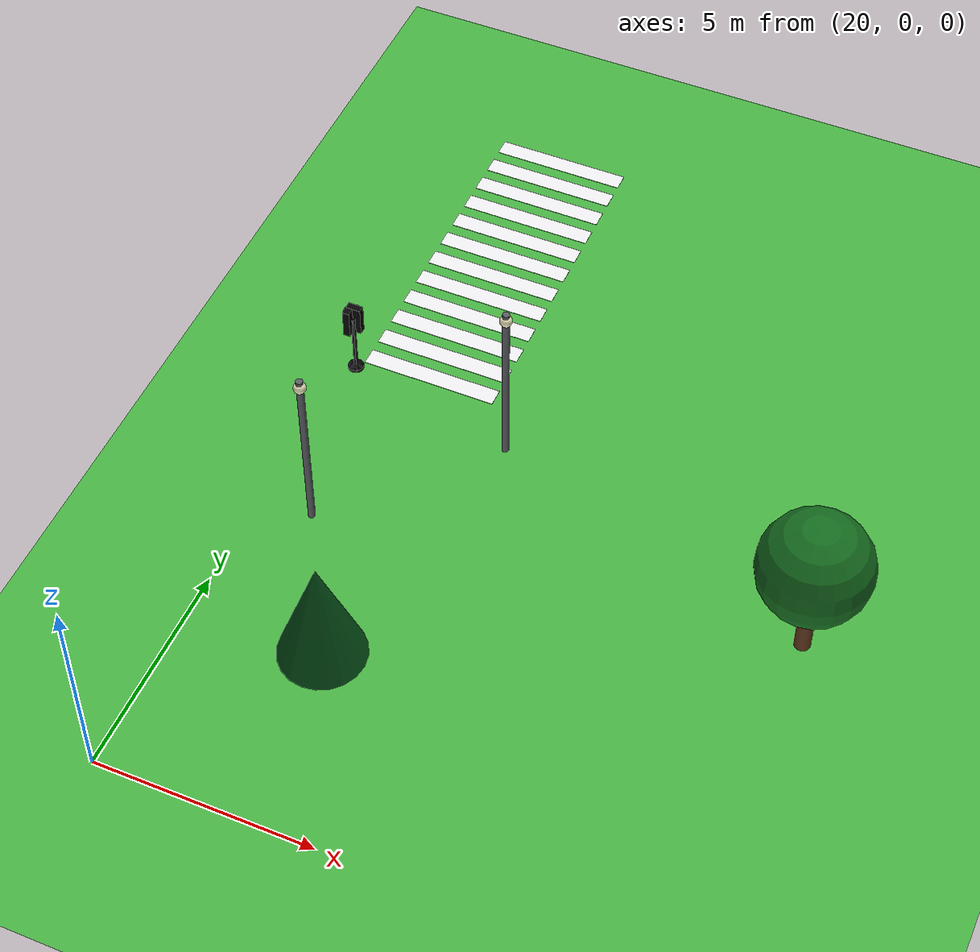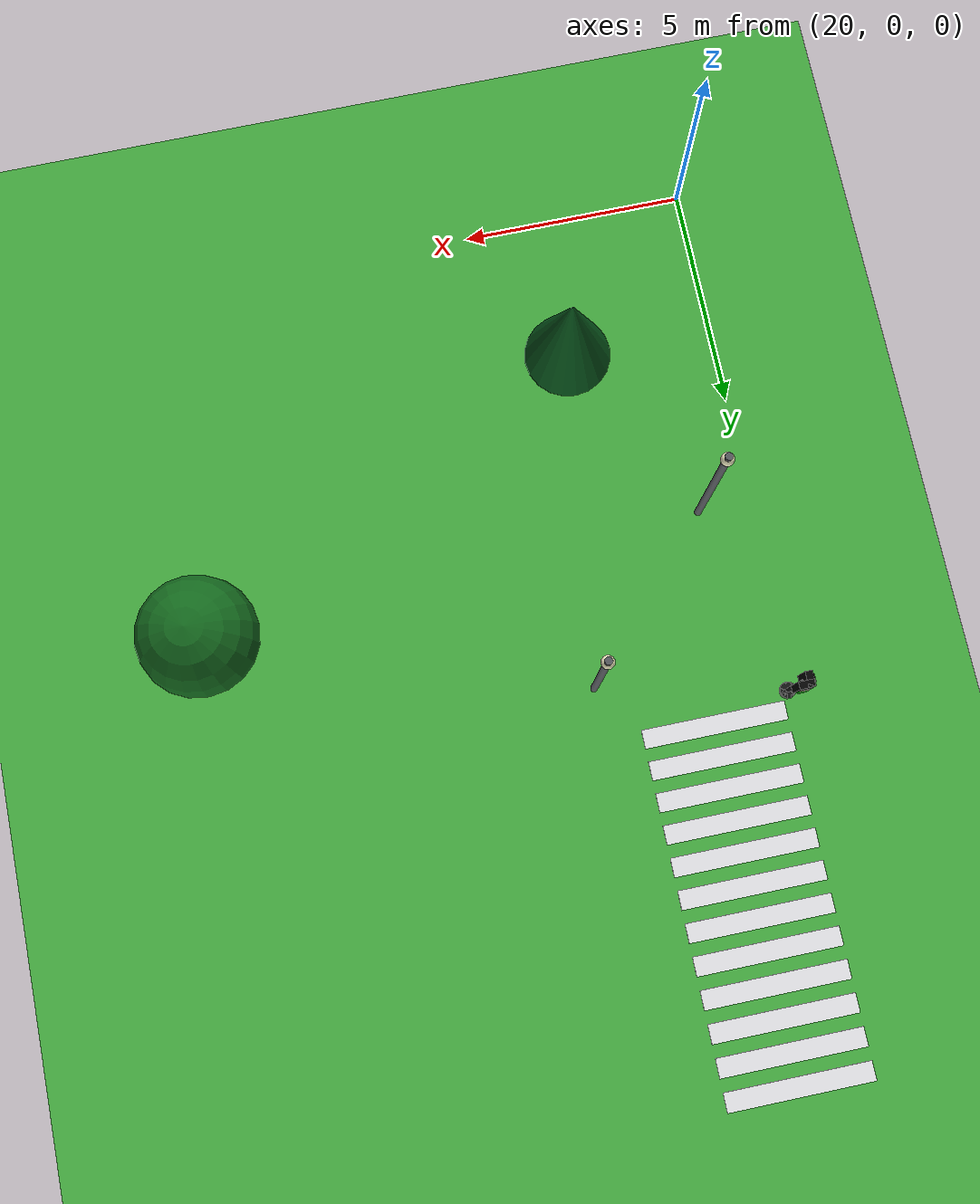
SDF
<sdf version="1.10">
 <world name="city_second">
  <model name="ground_plane">
   <static>true</static>
   <link name="link">
    <collision name="collision">
     <geometry><plane><normal>0 0 1</normal><size>300 300</size></plane></geometry>
    </collision>
    <visual name="visual">
     <geometry><plane><normal>0 0 1</normal><size>300 300</size></plane></geometry>
     <material>
      <ambient>0.280000001 0.689999998 0.25999999 1</ambient>
      <diffuse>0.280000001 0.689999998 0.25999999 1</diffuse>
      <specular>0.0299999993 0.0299999993 0.0299999993 1</specular>
     </material>
    </visual>
    <inertial>
     <mass>1</mass>
     <inertia><ixx>1</ixx><ixy>0</ixy><ixz>0</ixz><iyy>1</iyy><iyz>0</iyz><izz>1</izz></inertia>
    </inertial>
   </link>
  </model>
  <model name="crosswalk_v_2_1_east_7">
   <static>true</static>
   <pose>21.9419 16.021699999999999 0.017000000000000001 0 0 0</pose>
   <link name="stripe_1">
    <collision name="collision">
     <geometry><box><size>3.2000000000000002 0.41999999999999998 0.01</size></box></geometry>
    </collision>
    <visual name="visual">
     <geometry><box><size>3.2000000000000002 0.41999999999999998 0.01</size></box></geometry>
     <material>
      <ambient>0.920000017 0.920000017 0.930000007 1</ambient>
      <diffuse>0.920000017 0.920000017 0.930000007 1</diffuse>
      <specular>0.0299999993 0.0299999993 0.0299999993 1</specular>
     </material>
    </visual>
    <pose>0 -3.8500000000000001 0 0 0 0</pose>
    <inertial>
     <mass>1</mass>
     <inertia><ixx>1</ixx><ixy>0</ixy><ixz>0</ixz><iyy>1</iyy><iyz>0</iyz><izz>1</izz></inertia>
    </inertial>
   </link>
   <link name="stripe_2">
    <collision name="collision">
     <geometry><box><size>3.2000000000000002 0.41999999999999998 0.01</size></box></geometry>
    </collision>
    <visual name="visual">
     <geometry><box><size>3.2000000000000002 0.41999999999999998 0.01</size></box></geometry>
     <material>
      <ambient>0.920000017 0.920000017 0.930000007 1</ambient>
      <diffuse>0.920000017 0.920000017 0.930000007 1</diffuse>
      <specular>0.0299999993 0.0299999993 0.0299999993 1</specular>
     </material>
    </visual>
    <pose>0 -3.1500000000000004 0 0 0 0</pose>
    <inertial>
     <mass>1</mass>
     <inertia><ixx>1</ixx><ixy>0</ixy><ixz>0</ixz><iyy>1</iyy><iyz>0</iyz><izz>1</izz></inertia>
    </inertial>
   </link>
   <link name="stripe_3">
    <collision name="collision">
     <geometry><box><size>3.2000000000000002 0.41999999999999998 0.01</size></box></geometry>
    </collision>
    <visual name="visual">
     <geometry><box><size>3.2000000000000002 0.41999999999999998 0.01</size></box></geometry>
     <material>
      <ambient>0.920000017 0.920000017 0.930000007 1</ambient>
      <diffuse>0.920000017 0.920000017 0.930000007 1</diffuse>
      <specular>0.0299999993 0.0299999993 0.0299999993 1</specular>
     </material>
    </visual>
    <pose>0 -2.4499999999999993 0 0 0 0</pose>
    <inertial>
     <mass>1</mass>
     <inertia><ixx>1</ixx><ixy>0</ixy><ixz>0</ixz><iyy>1</iyy><iyz>0</iyz><izz>1</izz></inertia>
    </inertial>
   </link>
   <link name="stripe_4">
    <collision name="collision">
     <geometry><box><size>3.2000000000000002 0.41999999999999998 0.01</size></box></geometry>
    </collision>
    <visual name="visual">
     <geometry><box><size>3.2000000000000002 0.41999999999999998 0.01</size></box></geometry>
     <material>
      <ambient>0.920000017 0.920000017 0.930000007 1</ambient>
      <diffuse>0.920000017 0.920000017 0.930000007 1</diffuse>
      <specular>0.0299999993 0.0299999993 0.0299999993 1</specular>
     </material>
    </visual>
    <pose>0 -1.75 0 0 0 0</pose>
    <inertial>
     <mass>1</mass>
     <inertia><ixx>1</ixx><ixy>0</ixy><ixz>0</ixz><iyy>1</iyy><iyz>0</iyz><izz>1</izz></inertia>
    </inertial>
   </link>
   <link name="stripe_5">
    <collision name="collision">
     <geometry><box><size>3.2000000000000002 0.41999999999999998 0.01</size></box></geometry>
    </collision>
    <visual name="visual">
     <geometry><box><size>3.2000000000000002 0.41999999999999998 0.01</size></box></geometry>
     <material>
      <ambient>0.920000017 0.920000017 0.930000007 1</ambient>
      <diffuse>0.920000017 0.920000017 0.930000007 1</diffuse>
      <specular>0.0299999993 0.0299999993 0.0299999993 1</specular>
     </material>
    </visual>
    <pose>0 -1.0500000000000007 0 0 0 0</pose>
    <inertial>
     <mass>1</mass>
     <inertia><ixx>1</ixx><ixy>0</ixy><ixz>0</ixz><iyy>1</iyy><iyz>0</iyz><izz>1</izz></inertia>
    </inertial>
   </link>
   <link name="stripe_6">
    <collision name="collision">
     <geometry><box><size>3.2000000000000002 0.41999999999999998 0.01</size></box></geometry>
    </collision>
    <visual name="visual">
     <geometry><box><size>3.2000000000000002 0.41999999999999998 0.01</size></box></geometry>
     <material>
      <ambient>0.920000017 0.920000017 0.930000007 1</ambient>
      <diffuse>0.920000017 0.920000017 0.930000007 1</diffuse>
      <specular>0.0299999993 0.0299999993 0.0299999993 1</specular>
     </material>
    </visual>
    <pose>0 -0.34999999999999964 0 0 0 0</pose>
    <inertial>
     <mass>1</mass>
     <inertia><ixx>1</ixx><ixy>0</ixy><ixz>0</ixz><iyy>1</iyy><iyz>0</iyz><izz>1</izz></inertia>
    </inertial>
   </link>
   <link name="stripe_7">
    <collision name="collision">
     <geometry><box><size>3.2000000000000002 0.41999999999999998 0.01</size></box></geometry>
    </collision>
    <visual name="visual">
     <geometry><box><size>3.2000000000000002 0.41999999999999998 0.01</size></box></geometry>
     <material>
      <ambient>0.920000017 0.920000017 0.930000007 1</ambient>
      <diffuse>0.920000017 0.920000017 0.930000007 1</diffuse>
      <specular>0.0299999993 0.0299999993 0.0299999993 1</specular>
     </material>
    </visual>
    <pose>0 0.35000000000000142 0 0 0 0</pose>
    <inertial>
     <mass>1</mass>
     <inertia><ixx>1</ixx><ixy>0</ixy><ixz>0</ixz><iyy>1</iyy><iyz>0</iyz><izz>1</izz></inertia>
    </inertial>
   </link>
   <link name="stripe_8">
    <collision name="collision">
     <geometry><box><size>3.2000000000000002 0.41999999999999998 0.01</size></box></geometry>
    </collision>
    <visual name="visual">
     <geometry><box><size>3.2000000000000002 0.41999999999999998 0.01</size></box></geometry>
     <material>
      <ambient>0.920000017 0.920000017 0.930000007 1</ambient>
      <diffuse>0.920000017 0.920000017 0.930000007 1</diffuse>
      <specular>0.0299999993 0.0299999993 0.0299999993 1</specular>
     </material>
    </visual>
    <pose>0 1.0500000000000007 0 0 0 0</pose>
    <inertial>
     <mass>1</mass>
     <inertia><ixx>1</ixx><ixy>0</ixy><ixz>0</ixz><iyy>1</iyy><iyz>0</iyz><izz>1</izz></inertia>
    </inertial>
   </link>
   <link name="stripe_9">
    <collision name="collision">
     <geometry><box><size>3.2000000000000002 0.41999999999999998 0.01</size></box></geometry>
    </collision>
    <visual name="visual">
     <geometry><box><size>3.2000000000000002 0.41999999999999998 0.01</size></box></geometry>
     <material>
      <ambient>0.920000017 0.920000017 0.930000007 1</ambient>
      <diffuse>0.920000017 0.920000017 0.930000007 1</diffuse>
      <specular>0.0299999993 0.0299999993 0.0299999993 1</specular>
     </material>
    </visual>
    <pose>0 1.75 0 0 0 0</pose>
    <inertial>
     <mass>1</mass>
     <inertia><ixx>1</ixx><ixy>0</ixy><ixz>0</ixz><iyy>1</iyy><iyz>0</iyz><izz>1</izz></inertia>
    </inertial>
   </link>
   <link name="stripe_10">
    <collision name="collision">
     <geometry><box><size>3.2000000000000002 0.41999999999999998 0.01</size></box></geometry>
    </collision>
    <visual name="visual">
     <geometry><box><size>3.2000000000000002 0.41999999999999998 0.01</size></box></geometry>
     <material>
      <ambient>0.920000017 0.920000017 0.930000007 1</ambient>
      <diffuse>0.920000017 0.920000017 0.930000007 1</diffuse>
      <specular>0.0299999993 0.0299999993 0.0299999993 1</specular>
     </material>
    </visual>
    <pose>0 2.4499999999999993 0 0 0 0</pose>
    <inertial>
     <mass>1</mass>
     <inertia><ixx>1</ixx><ixy>0</ixy><ixz>0</ixz><iyy>1</iyy><iyz>0</iyz><izz>1</izz></inertia>
    </inertial>
   </link>
   <link name="stripe_11">
    <collision name="collision">
     <geometry><box><size>3.2000000000000002 0.41999999999999998 0.01</size></box></geometry>
    </collision>
    <visual name="visual">
     <geometry><box><size>3.2000000000000002 0.41999999999999998 0.01</size></box></geometry>
     <material>
      <ambient>0.920000017 0.920000017 0.930000007 1</ambient>
      <diffuse>0.920000017 0.920000017 0.930000007 1</diffuse>
      <specular>0.0299999993 0.0299999993 0.0299999993 1</specular>
     </material>
    </visual>
    <pose>0 3.1499999999999986 0 0 0 0</pose>
    <inertial>
     <mass>1</mass>
     <inertia><ixx>1</ixx><ixy>0</ixy><ixz>0</ixz><iyy>1</iyy><iyz>0</iyz><izz>1</izz></inertia>
    </inertial>
   </link>
   <link name="stripe_12">
    <collision name="collision">
     <geometry><box><size>3.2000000000000002 0.41999999999999998 0.01</size></box></geometry>
    </collision>
    <visual name="visual">
     <geometry><box><size>3.2000000000000002 0.41999999999999998 0.01</size></box></geometry>
     <material>
      <ambient>0.920000017 0.920000017 0.930000007 1</ambient>
      <diffuse>0.920000017 0.920000017 0.930000007 1</diffuse>
      <specular>0.0299999993 0.0299999993 0.0299999993 1</specular>
     </material>
    </visual>
    <pose>0 3.8500000000000014 0 0 0 0</pose>
    <inertial>
     <mass>1</mass>
     <inertia><ixx>1</ixx><ixy>0</ixy><ixz>0</ixz><iyy>1</iyy><iyz>0</iyz><izz>1</izz></inertia>
    </inertial>
   </link>
  </model>
  <model name="lamp_1_2_12">
   <static>true</static>
   <pose>24.347899999999999 10.8561 2.2000000000000002 0 0 0</pose>
   <link name="link">
    <collision name="collision">
     <geometry>
      <cylinder><radius>0.080000000000000002</radius><length>4.4000000000000004</length></cylinder>
     </geometry>
    </collision>
    <visual name="pole">
     <geometry>
      <cylinder><radius>0.080000000000000002</radius><length>4.4000000000000004</length></cylinder>
     </geometry>
     <material>
      <ambient>0.349999994 0.360000014 0.379999995 1</ambient>
      <diffuse>0.349999994 0.360000014 0.379999995 1</diffuse>
      <specular>0.0299999993 0.0299999993 0.0299999993 1</specular>
     </material>
    </visual>
    <visual name="lamp_head">
     <pose>0 0 2 0 0 0</pose>
     <geometry><sphere><radius>0.14000000000000001</radius></sphere></geometry>
     <material>
      <ambient>0.959999979 0.939999998 0.779999971 1</ambient>
      <diffuse>0.959999979 0.939999998 0.779999971 1</diffuse>
      <specular>0.0299999993 0.0299999993 0.0299999993 1</specular>
     </material>
    </visual>
    <inertial>
     <mass>1</mass>
     <inertia><ixx>1</ixx><ixy>0</ixy><ixz>0</ixz><iyy>1</iyy><iyz>0</iyz><izz>1</izz></inertia>
    </inertial>
   </link>
  </model>
  <model name="lamp_1_2_13">
   <static>true</static>
   <pose>21.219799999999999 7.4495699999999996 2.2000000000000002 0 0 0</pose>
   <link name="link">
    <collision name="collision">
     <geometry>
      <cylinder><radius>0.080000000000000002</radius><length>4.4000000000000004</length></cylinder>
     </geometry>
    </collision>
    <visual name="pole">
     <geometry>
      <cylinder><radius>0.080000000000000002</radius><length>4.4000000000000004</length></cylinder>
     </geometry>
     <material>
      <ambient>0.349999994 0.360000014 0.379999995 1</ambient>
      <diffuse>0.349999994 0.360000014 0.379999995 1</diffuse>
      <specular>0.0299999993 0.0299999993 0.0299999993 1</specular>
     </material>
    </visual>
    <visual name="lamp_head">
     <pose>0 0 2 0 0 0</pose>
     <geometry><sphere><radius>0.14000000000000001</radius></sphere></geometry>
     <material>
      <ambient>0.959999979 0.939999998 0.779999971 1</ambient>
      <diffuse>0.959999979 0.939999998 0.779999971 1</diffuse>
      <specular>0.0299999993 0.0299999993 0.0299999993 1</specular>
     </material>
    </visual>
    <inertial>
     <mass>1</mass>
     <inertia><ixx>1</ixx><ixy>0</ixy><ixz>0</ixz><iyy>1</iyy><iyz>0</iyz><izz>1</izz></inertia>
    </inertial>
   </link>
  </model>
  <model name="Oak tree_0">
   <static>true</static>
   <pose>32.146799999999999 8.4817300000000007 0 0 0 0</pose>
   <link name="link">
    <collision name="footprint">
     <pose>0 0 0.050000000000000003 0 0 0</pose>
     <geometry>
      <cylinder><radius>0.90000000000000002</radius><length>0.10000000000000001</length></cylinder>
     </geometry>
    </collision>
    <visual name="trunk">
     <pose>0 0 1.1000000000000001 0 0 0</pose>
     <geometry>
      <cylinder><radius>0.17999999999999999</radius><length>2.2000000000000002</length></cylinder>
     </geometry>
     <material>
      <ambient>0.379999995 0.219999999 0.109999999 1</ambient>
      <diffuse>0.379999995 0.219999999 0.109999999 1</diffuse>
      <specular>0.119999997 0.119999997 0.119999997 1</specular>
      <emissive>0 0 0 1</emissive>
     </material>
    </visual>
    <visual name="crown">
     <pose>0 0 2.6499999999999999 0 0 0</pose>
     <geometry><sphere><radius>1.25</radius></sphere></geometry>
     <material>
      <ambient>0.0799999982 0.419999987 0.119999997 1</ambient>
      <diffuse>0.0799999982 0.419999987 0.119999997 1</diffuse>
      <specular>0.119999997 0.119999997 0.119999997 1</specular>
      <emissive>0 0 0 1</emissive>
     </material>
    </visual>
    <inertial>
     <mass>1</mass>
     <inertia><ixx>1</ixx><ixy>0</ixy><ixz>0</ixz><iyy>1</iyy><iyz>0</iyz><izz>1</izz></inertia>
    </inertial>
   </link>
  </model>
  <model name="Pine Tree_9">
   <static>true</static>
   <pose>23.437200000000001 3.6228500000000001 0 0 0 0</pose>
   <link name="link">
    <collision name="footprint">
     <pose>0 0 0.050000000000000003 0 0 0</pose>
     <geometry>
      <cylinder><radius>0.65000000000000002</radius><length>0.10000000000000001</length></cylinder>
     </geometry>
    </collision>
    <visual name="trunk">
     <pose>0 0 0.90000000000000002 0 0 0</pose>
     <geometry><cylinder><radius>0.13</radius><length>1.8</length></cylinder></geometry>
     <material>
      <ambient>0.360000014 0.200000003 0.100000001 1</ambient>
      <diffuse>0.360000014 0.200000003 0.100000001 1</diffuse>
      <specular>0.119999997 0.119999997 0.119999997 1</specular>
      <emissive>0 0 0 1</emissive>
     </material>
    </visual>
    <visual name="crown">
     <pose>0 0 2.4500000000000002 0 0 0</pose>
     <geometry><cone><radius>0.94999999999999996</radius><length>2.7000000000000002</length></cone></geometry>
     <material>
      <ambient>0.0299999993 0.340000004 0.109999999 1</ambient>
      <diffuse>0.0299999993 0.340000004 0.109999999 1</diffuse>
      <specular>0.119999997 0.119999997 0.119999997 1</specular>
      <emissive>0 0 0 1</emissive>
     </material>
    </visual>
    <inertial>
     <mass>1</mass>
     <inertia><ixx>1</ixx><ixy>0</ixy><ixz>0</ixz><iyy>1</iyy><iyz>0</iyz><izz>1</izz></inertia>
    </inertial>
   </link>
  </model>
  <model name="simple_traffic_light_green_west_1_2">
   <static>true</static>
   <pose>20.209720938501111 11.759744658745365 -2.0816681711721685e-17 0 0 1.5707999672671711</pose>
   <link name="base">
    <pose>0 0 0.040000000000000001 0 0 0</pose>
    <collision name="collision">
     <geometry>
      <cylinder><radius>0.17999999999999999</radius><length>0.080000000000000002</length></cylinder>
     </geometry>
    </collision>
    <visual name="visual">
     <geometry>
      <cylinder><radius>0.17999999999999999</radius><length>0.080000000000000002</length></cylinder>
     </geometry>
     <material>
      <ambient>0.0799999982 0.0799999982 0.0799999982 1</ambient>
      <diffuse>0.0799999982 0.0799999982 0.0799999982 1</diffuse>
      <specular>0.150000006 0.150000006 0.150000006 1</specular>
      <emissive>0 0 0 1</emissive>
     </material>
    </visual>
    <inertial>
     <mass>1</mass>
     <inertia><ixx>1</ixx><ixy>0</ixy><ixz>0</ixz><iyy>1</iyy><iyz>0</iyz><izz>1</izz></inertia>
    </inertial>
   </link>
   <link name="pole">
    <pose>1.7763568394002505e-15 -3.5527136788005009e-15 0.80000000000000004 0 0 3.3306690738754696e-16</pose>
    <collision name="collision">
     <geometry>
      <cylinder><radius>0.044999999999999998</radius><length>1.6000000000000001</length></cylinder>
     </geometry>
    </collision>
    <visual name="visual">
     <geometry>
      <cylinder><radius>0.044999999999999998</radius><length>1.6000000000000001</length></cylinder>
     </geometry>
     <material>
      <ambient>0.0799999982 0.0799999982 0.0799999982 1</ambient>
      <diffuse>0.0799999982 0.0799999982 0.0799999982 1</diffuse>
      <specular>0.150000006 0.150000006 0.150000006 1</specular>
      <emissive>0 0 0 1</emissive>
     </material>
    </visual>
    <inertial>
     <mass>1</mass>
     <inertia><ixx>1</ixx><ixy>0</ixy><ixz>0</ixz><iyy>1</iyy><iyz>0</iyz><izz>1</izz></inertia>
    </inertial>
   </link>
   <link name="signal_box">
    <pose>0 0.089999999999992752 1.55 0 0 3.3306690738754696e-16</pose>
    <collision name="collision">
     <geometry><box><size>0.34000000000000002 0.16 0.71999999999999997</size></box></geometry>
    </collision>
    <visual name="visual">
     <geometry><box><size>0.34000000000000002 0.16 0.71999999999999997</size></box></geometry>
     <material>
      <ambient>0.0199999996 0.0199999996 0.0199999996 1</ambient>
      <diffuse>0.0199999996 0.0199999996 0.0199999996 1</diffuse>
      <specular>0.150000006 0.150000006 0.150000006 1</specular>
      <emissive>0 0 0 1</emissive>
     </material>
    </visual>
    <inertial>
     <mass>1</mass>
     <inertia><ixx>1</ixx><ixy>0</ixy><ixz>0</ixz><iyy>1</iyy><iyz>0</iyz><izz>1</izz></inertia>
    </inertial>
   </link>
   <link name="red_lens">
    <pose>1.7763568394002505e-15 0.18099999999999739 1.78 1.5707963267999998 2.355138688059715e-16 -1.3345785898806078e-15</pose>
    <collision name="collision">
     <geometry><cylinder><radius>0.105</radius><length>0.035000000000000003</length></cylinder></geometry>
    </collision>
    <visual name="visual">
     <geometry><cylinder><radius>0.105</radius><length>0.035000000000000003</length></cylinder></geometry>
     <material>
      <ambient>0.0799999982 0.0799999982 0.0799999982 1</ambient>
      <diffuse>0.0799999982 0.0799999982 0.0799999982 1</diffuse>
      <specular>0.150000006 0.150000006 0.150000006 1</specular>
      <emissive>0 0 0 1</emissive>
     </material>
    </visual>
    <inertial>
     <mass>1</mass>
     <inertia><ixx>1</ixx><ixy>0</ixy><ixz>0</ixz><iyy>1</iyy><iyz>0</iyz><izz>1</izz></inertia>
    </inertial>
   </link>
   <link name="yellow_lens">
    <pose>1.7763568394002505e-15 0.18199999999999505 1.55 1.5707963267999998 2.355138688059715e-16 -1.3345785898806078e-15</pose>
    <collision name="collision">
     <geometry>
      <cylinder><radius>0.095000000000000001</radius><length>0.035000000000000003</length></cylinder>
     </geometry>
    </collision>
    <visual name="visual">
     <geometry>
      <cylinder><radius>0.095000000000000001</radius><length>0.035000000000000003</length></cylinder>
     </geometry>
     <material>
      <ambient>0.119999997 0.100000001 0.0199999996 1</ambient>
      <diffuse>0.119999997 0.100000001 0.0199999996 1</diffuse>
      <specular>0.150000006 0.150000006 0.150000006 1</specular>
      <emissive>0 0 0 1</emissive>
     </material>
    </visual>
    <inertial>
     <mass>1</mass>
     <inertia><ixx>1</ixx><ixy>0</ixy><ixz>0</ixz><iyy>1</iyy><iyz>0</iyz><izz>1</izz></inertia>
    </inertial>
   </link>
   <link name="green_lens">
    <pose>3.5527136788005009e-15 0.18299999999999628 1.3200000000000003 1.5707963267999998 2.355138688059715e-16 -1.3345785898806078e-15</pose>
    <collision name="collision">
     <geometry><cylinder><radius>0.105</radius><length>0.035000000000000003</length></cylinder></geometry>
    </collision>
    <visual name="visual">
     <geometry><cylinder><radius>0.105</radius><length>0.035000000000000003</length></cylinder></geometry>
     <material>
      <ambient>0.0199999996 1 0.0199999996 1</ambient>
      <diffuse>0.0199999996 1 0.0199999996 1</diffuse>
      <specular>0.150000006 0.150000006 0.150000006 1</specular>
      <emissive>0.0199999996 1 0.0199999996 1</emissive>
     </material>
    </visual>
    <inertial>
     <mass>1</mass>
     <inertia><ixx>1</ixx><ixy>0</ixy><ixz>0</ixz><iyy>1</iyy><iyz>0</iyz><izz>1</izz></inertia>
    </inertial>
   </link>
  </model>
  <model name="simple_traffic_light_green_north_1_4">
   <static>true</static>
   <pose>20.216551537873478 11.763249245657292 0 0 0 0</pose>
   <link name="base">
    <pose>0 0 0.040000000000000001 0 0 0</pose>
    <collision name="collision">
     <geometry>
      <cylinder><radius>0.17999999999999999</radius><length>0.080000000000000002</length></cylinder>
     </geometry>
    </collision>
    <visual name="visual">
     <geometry>
      <cylinder><radius>0.17999999999999999</radius><length>0.080000000000000002</length></cylinder>
     </geometry>
     <material>
      <ambient>0.0799999982 0.0799999982 0.0799999982 1</ambient>
      <diffuse>0.0799999982 0.0799999982 0.0799999982 1</diffuse>
      <specular>0.150000006 0.150000006 0.150000006 1</specular>
      <emissive>0 0 0 1</emissive>
     </material>
    </visual>
    <inertial>
     <mass>1</mass>
     <inertia><ixx>1</ixx><ixy>0</ixy><ixz>0</ixz><iyy>1</iyy><iyz>0</iyz><izz>1</izz></inertia>
    </inertial>
   </link>
   <link name="pole">
    <pose>0 0 0.80000000000000004 0 0 0</pose>
    <collision name="collision">
     <geometry>
      <cylinder><radius>0.044999999999999998</radius><length>1.6000000000000001</length></cylinder>
     </geometry>
    </collision>
    <visual name="visual">
     <geometry>
      <cylinder><radius>0.044999999999999998</radius><length>1.6000000000000001</length></cylinder>
     </geometry>
     <material>
      <ambient>0.0799999982 0.0799999982 0.0799999982 1</ambient>
      <diffuse>0.0799999982 0.0799999982 0.0799999982 1</diffuse>
      <specular>0.150000006 0.150000006 0.150000006 1</specular>
      <emissive>0 0 0 1</emissive>
     </material>
    </visual>
    <inertial>
     <mass>1</mass>
     <inertia><ixx>1</ixx><ixy>0</ixy><ixz>0</ixz><iyy>1</iyy><iyz>0</iyz><izz>1</izz></inertia>
    </inertial>
   </link>
   <link name="signal_box">
    <pose>0 0.089999999999999858 1.55 0 0 0</pose>
    <collision name="collision">
     <geometry><box><size>0.34000000000000002 0.16 0.71999999999999997</size></box></geometry>
    </collision>
    <visual name="visual">
     <geometry><box><size>0.34000000000000002 0.16 0.71999999999999997</size></box></geometry>
     <material>
      <ambient>0.0199999996 0.0199999996 0.0199999996 1</ambient>
      <diffuse>0.0199999996 0.0199999996 0.0199999996 1</diffuse>
      <specular>0.150000006 0.150000006 0.150000006 1</specular>
      <emissive>0 0 0 1</emissive>
     </material>
    </visual>
    <inertial>
     <mass>1</mass>
     <inertia><ixx>1</ixx><ixy>0</ixy><ixz>0</ixz><iyy>1</iyy><iyz>0</iyz><izz>1</izz></inertia>
    </inertial>
   </link>
   <link name="red_lens">
    <pose>0 0.18099999999999916 1.78 1.5707963268000003 0 0</pose>
    <collision name="collision">
     <geometry><cylinder><radius>0.105</radius><length>0.035000000000000003</length></cylinder></geometry>
    </collision>
    <visual name="visual">
     <geometry><cylinder><radius>0.105</radius><length>0.035000000000000003</length></cylinder></geometry>
     <material>
      <ambient>0.0799999982 0.0799999982 0.0799999982 1</ambient>
      <diffuse>0.0799999982 0.0799999982 0.0799999982 1</diffuse>
      <specular>0.150000006 0.150000006 0.150000006 1</specular>
      <emissive>0 0 0 1</emissive>
     </material>
    </visual>
    <inertial>
     <mass>1</mass>
     <inertia><ixx>1</ixx><ixy>0</ixy><ixz>0</ixz><iyy>1</iyy><iyz>0</iyz><izz>1</izz></inertia>
    </inertial>
   </link>
   <link name="yellow_lens">
    <pose>0 0.18200000000000038 1.55 1.5707963268000003 0 0</pose>
    <collision name="collision">
     <geometry>
      <cylinder><radius>0.095000000000000001</radius><length>0.035000000000000003</length></cylinder>
     </geometry>
    </collision>
    <visual name="visual">
     <geometry>
      <cylinder><radius>0.095000000000000001</radius><length>0.035000000000000003</length></cylinder>
     </geometry>
     <material>
      <ambient>0.119999997 0.100000001 0.0199999996 1</ambient>
      <diffuse>0.119999997 0.100000001 0.0199999996 1</diffuse>
      <specular>0.150000006 0.150000006 0.150000006 1</specular>
      <emissive>0 0 0 1</emissive>
     </material>
    </visual>
    <inertial>
     <mass>1</mass>
     <inertia><ixx>1</ixx><ixy>0</ixy><ixz>0</ixz><iyy>1</iyy><iyz>0</iyz><izz>1</izz></inertia>
    </inertial>
   </link>
   <link name="green_lens">
    <pose>0 0.18299999999999983 1.3200000000000001 1.5707963268000003 0 0</pose>
    <collision name="collision">
     <geometry><cylinder><radius>0.105</radius><length>0.035000000000000003</length></cylinder></geometry>
    </collision>
    <visual name="visual">
     <geometry><cylinder><radius>0.105</radius><length>0.035000000000000003</length></cylinder></geometry>
     <material>
      <ambient>0.0199999996 1 0.0199999996 1</ambient>
      <diffuse>0.0199999996 1 0.0199999996 1</diffuse>
      <specular>0.150000006 0.150000006 0.150000006 1</specular>
      <emissive>0.0199999996 1 0.0199999996 1</emissive>
     </material>
    </visual>
    <inertial>
     <mass>1</mass>
     <inertia><ixx>1</ixx><ixy>0</ixy><ixz>0</ixz><iyy>1</iyy><iyz>0</iyz><izz>1</izz></inertia>
    </inertial>
   </link>
  </model>
 </world>
</sdf>
